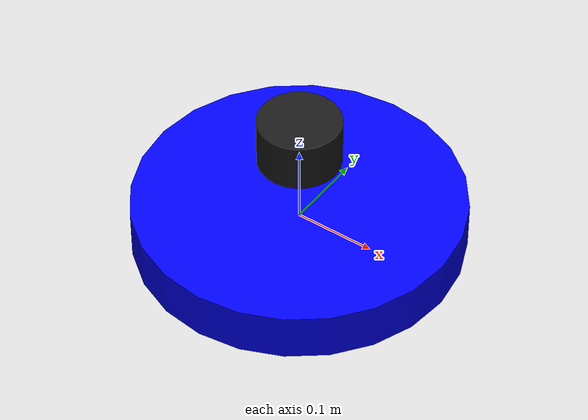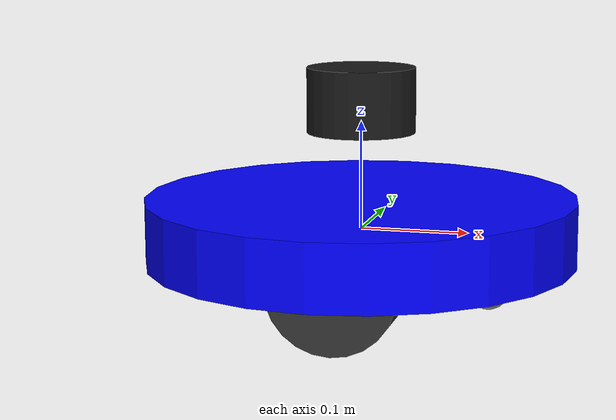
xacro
<?xml version="1.0"?>
<robot name="diff_drive_robot_lidar" xmlns:xacro="http://www.ros.org/wiki/xacro">

  <!-- ========== 包含激光雷达插件 ========== -->
  <xacro:include filename="sensors/lidar_plugin.xacro"/>

  <!-- ========== 机器人参数 ========== -->
  <xacro:property name="pi" value="3.14159265358979"/>
  <xacro:property name="wheel_radius" value="0.06"/>
  <xacro:property name="wheel_length" value="0.04"/>
  <xacro:property name="wheel_mass" value="0.1"/>
  <xacro:property name="wheel_separation" value="0.2"/>
  <xacro:property name="caster_radius" value="0.02"/>
  <xacro:property name="caster_mass" value="0.05"/>
  <xacro:property name="body_radius" value="0.2"/>
  <xacro:property name="body_height" value="0.06"/>
  <xacro:property name="base_mass" value="1.0"/>

  <!-- ========== 材质定义 ========== -->
  <material name="blue">
    <color rgba="0 0 1 1"/>
  </material>
  <material name="dark_gray">
    <color rgba="0.2 0.2 0.2 1"/>
  </material>
  <material name="gray">
    <color rgba="0.5 0.5 0.5 1"/>
  </material>

  <!-- ========== 惯性宏 ========== -->
  <xacro:macro name="cylinder_inertia" params="mass radius length">
    <inertia ixx="${(1/12) * mass * (3*radius*radius + length*length)}"
             ixy="0" ixz="0"
             iyy="${(1/12) * mass * (3*radius*radius + length*length)}"
             iyz="0"
             izz="${(1/2) * mass * radius*radius}"/>
  </xacro:macro>

  <!-- ========== 基座 ========== -->
  <link name="base_link">
    <visual>
      <geometry>
        <cylinder radius="${body_radius}" length="${body_height}"/>
      </geometry>
      <origin xyz="0 0 0" rpy="0 0 0"/>
      <material name="blue"/>
    </visual>
    <collision>
      <geometry>
        <cylinder radius="${body_radius}" length="${body_height}"/>
      </geometry>
      <origin xyz="0 0 0" rpy="0 0 0"/>
    </collision>
    <inertial>
      <mass value="${base_mass}"/>
      <xacro:cylinder_inertia mass="${base_mass}" radius="${body_radius}" length="${body_height}"/>
    </inertial>
  </link>

  <!-- ========== 左轮 ========== -->
  <link name="left_wheel_link">
    <visual>
      <geometry>
        <cylinder radius="${wheel_radius}" length="${wheel_length}"/>
      </geometry>
      <origin xyz="0 0 0" rpy="${pi/2} 0 0"/>
      <material name="dark_gray"/>
    </visual>
    <collision>
      <geometry>
        <cylinder radius="${wheel_radius}" length="${wheel_length}"/>
      </geometry>
      <origin xyz="0 0 0" rpy="${pi/2} 0 0"/>
    </collision>
    <inertial>
      <mass value="${wheel_mass}"/>
      <xacro:cylinder_inertia mass="${wheel_mass}" radius="${wheel_radius}" length="${wheel_length}"/>
    </inertial>
  </link>

  <joint name="left_wheel_joint" type="continuous">
    <parent link="base_link"/>
    <child link="left_wheel_link"/>
    <origin xyz="0 ${wheel_separation/2} ${-wheel_radius/2}" rpy="0 0 0"/>
    <axis xyz="0 1 0"/>
    <limit effort="10" velocity="10"/>
  </joint>

  <!-- ========== 右轮 ========== -->
  <link name="right_wheel_link">
    <visual>
      <geometry>
        <cylinder radius="${wheel_radius}" length="${wheel_length}"/>
      </geometry>
      <origin xyz="0 0 0" rpy="${pi/2} 0 0"/>
      <material name="dark_gray"/>
    </visual>
    <collision>
      <geometry>
        <cylinder radius="${wheel_radius}" length="${wheel_length}"/>
      </geometry>
      <origin xyz="0 0 0" rpy="${pi/2} 0 0"/>
    </collision>
    <inertial>
      <mass value="${wheel_mass}"/>
      <xacro:cylinder_inertia mass="${wheel_mass}" radius="${wheel_radius}" length="${wheel_length}"/>
    </inertial>
  </link>

  <joint name="right_wheel_joint" type="continuous">
    <parent link="base_link"/>
    <child link="right_wheel_link"/>
    <origin xyz="0 ${-wheel_separation/2} ${-wheel_radius/2}" rpy="0 0 0"/>
    <axis xyz="0 1 0"/>
    <limit effort="10" velocity="10"/>
  </joint>

  <!-- ========== 万向轮 ========== -->
  <link name="front_caster_link">
    <visual>
      <geometry>
        <sphere radius="${caster_radius}"/>
      </geometry>
      <origin xyz="0 0 0" rpy="0 0 0"/>
      <material name="gray"/>
    </visual>
    <collision>
      <geometry>
        <sphere radius="${caster_radius}"/>
      </geometry>
      <origin xyz="0 0 0" rpy="0 0 0"/>
    </collision>
    <inertial>
      <mass value="${caster_mass}"/>
      <inertia ixx="0.0001" ixy="0" ixz="0" iyy="0.0001" iyz="0" izz="0.0001"/>
    </inertial>
  </link>

  <joint name="front_caster_joint" type="continuous">
    <parent link="base_link"/>
    <child link="front_caster_link"/>
    <origin xyz="${body_radius * 0.6} 0 ${-caster_radius - body_height/2}" rpy="0 0 0"/>
    <axis xyz="0 0 1"/>
  </joint>

  <link name="back_caster_link">
    <visual>
      <geometry>
        <sphere radius="${caster_radius}"/>
      </geometry>
      <origin xyz="0 0 0" rpy="0 0 0"/>
      <material name="gray"/>
    </visual>
    <collision>
      <geometry>
        <sphere radius="${caster_radius}"/>
      </geometry>
      <origin xyz="0 0 0" rpy="0 0 0"/>
    </collision>
    <inertial>
      <mass value="${caster_mass}"/>
      <inertia ixx="0.0001" ixy="0" ixz="0" iyy="0.0001" iyz="0" izz="0.0001"/>
    </inertial>
  </link>

  <joint name="back_caster_joint" type="continuous">
    <parent link="base_link"/>
    <child link="back_caster_link"/>
    <origin xyz="-${body_radius * 0.6} 0 ${-caster_radius - body_height/2}" rpy="0 0 0"/>
    <axis xyz="0 0 1"/>
  </joint>

  <!-- ========== 激光雷达 ========== -->
  <xacro:add_lidar prefix="diff_robot"
                   x="0" y="0" z="0.12"
                   min_range="0.1" max_range="8.0"
                   angle_min="-3.14159" angle_max="3.14159"
                   samples="360"/>

  <!-- ========== Gazebo 差速驱动插件 ========== -->
  <gazebo>
    <plugin name="differential_drive_controller" filename="libgazebo_ros_diff_drive.so">
      <robotNamespace>/</robotNamespace>
      <left_joint>left_wheel_joint</left_joint>
      <right_joint>right_wheel_joint</right_joint>
      <wheel_separation>${wheel_separation}</wheel_separation>
      <wheel_diameter>${wheel_radius * 2}</wheel_diameter>
      <command_topic>cmd_vel</command_topic>
      <odometry_topic>odom</odometry_topic>
      <odometry_frame>odom</odometry_frame>
      <robot_base_frame>base_link</robot_base_frame>
      <publish_odom>true</publish_odom>
      <publish_wheel_tf>true</publish_wheel_tf>
      <publish_wheel_joint_state>true</publish_wheel_joint_state>
      <update_rate>50.0</update_rate>
      <always_on>true</always_on>
    </plugin>
  </gazebo>

</robot>

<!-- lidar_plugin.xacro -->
<robot xmlns:xacro="http://www.ros.org/wiki/xacro">

  <!-- ========== 激光雷达参数 ========== -->
  <xacro:property name="lidar_radius" value="0.05"/>
  <xacro:property name="lidar_height" value="0.06"/>
  <xacro:property name="lidar_mass" value="0.05"/>

  <!-- ========== 激光雷达材质（定义在插件中） ========== -->
  <material name="lidar_material">
    <color rgba="0.1 0.1 0.1 1"/>
  </material>

  <!-- ========== 激光雷达宏 ========== -->
  <xacro:macro name="add_lidar" params="prefix
                        x:=0 y:=0 z:=0.1
                        min_range:=0.1 max_range:=8.0
                        angle_min:=-3.14159 angle_max:=3.14159
                        samples:=360">

    <!-- 激光雷达链接 -->
    <link name="${prefix}_lidar_link">
      <visual>
        <geometry>
          <cylinder radius="${lidar_radius}" length="${lidar_height}"/>
        </geometry>
        <origin xyz="0 0 0" rpy="0 0 0"/>
        <material name="lidar_material"/>
      </visual>
      <collision>
        <geometry>
          <cylinder radius="${lidar_radius}" length="${lidar_height}"/>
        </geometry>
        <origin xyz="0 0 0" rpy="0 0 0"/>
      </collision>
      <inertial>
        <mass value="${lidar_mass}"/>
        <inertia ixx="0.0001" ixy="0" ixz="0" iyy="0.0001" iyz="0" izz="0.0001"/>
      </inertial>
    </link>

    <!-- 激光雷达关节：父链接统一使用 base_link -->
    <joint name="${prefix}_lidar_joint" type="fixed">
      <parent link="base_link"/>
      <child link="${prefix}_lidar_link"/>
      <origin xyz="${x} ${y} ${z}" rpy="0 0 0"/>
    </joint>

    <!-- Gazebo 激光雷达插件 -->
    <gazebo reference="${prefix}_lidar_link">
      <material>Gazebo/Black</material>
      <sensor name="${prefix}_lidar_sensor" type="ray">
        <pose>0 0 0 0 0 0</pose>
        <visualize>true</visualize>
        <update_rate>10</update_rate>
        <ray>
          <scan>
            <horizontal>
              <samples>${samples}</samples>
              <resolution>1</resolution>
              <min_angle>${angle_min}</min_angle>
              <max_angle>${angle_max}</max_angle>
            </horizontal>
          </scan>
          <range>
            <min>${min_range}</min>
            <max>${max_range}</max>
            <resolution>0.01</resolution>
          </range>
          <noise>
            <type>gaussian</type>
            <mean>0.0</mean>
            <stddev>0.01</stddev>
          </noise>
        </ray>
        <plugin name="${prefix}_lidar_controller" filename="libgazebo_ros_ray_sensor.so">
          <ros>
            <namespace>/</namespace>
            <remapping>~/out:=${prefix}_scan</remapping>
          </ros>
          <output_type>sensor_msgs/LaserScan</output_type>
          <frame_name>${prefix}_lidar_link</frame_name>
          <min_range>${min_range}</min_range>
          <max_range>${max_range}</max_range>
        </plugin>
      </sensor>
    </gazebo>

  </xacro:macro>

</robot>
